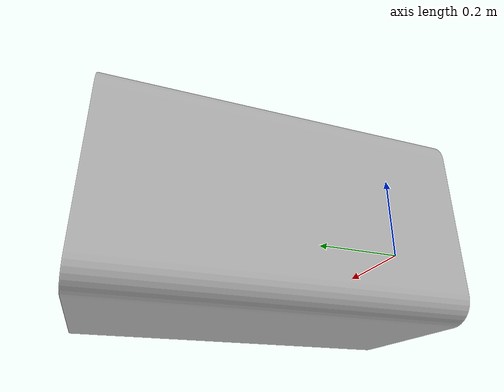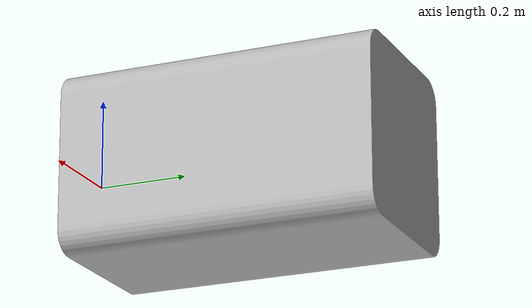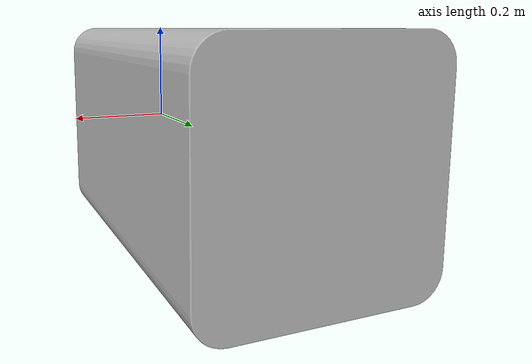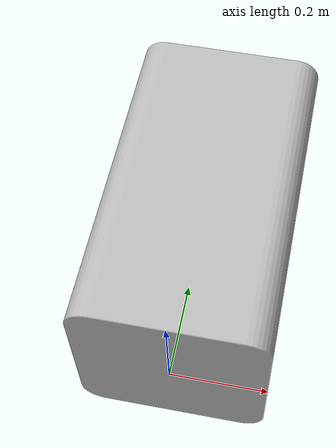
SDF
<?xml version="1.0" ?>
<sdf version="1.4">
    <model name="picket_t">
      <link name="body">
        <visual name="visual">
          <geometry>
            <mesh><uri>model://pickets/picket_t/picket_t.dae</uri></mesh>
          </geometry>
        </visual>
        <collision name="picket_t">
          <pose>0 0.35 0 1.5708 0 0</pose>
          <geometry>
            <box><size>0.397 0.397 0.7</size></box>
          </geometry>
          <surface>
            <friction>
              <ode>
                <mu>100</mu>
                <mu2>50</mu2>
              </ode>
            </friction>
          </surface>
        </collision>
      </link>
    </model>
</sdf>
